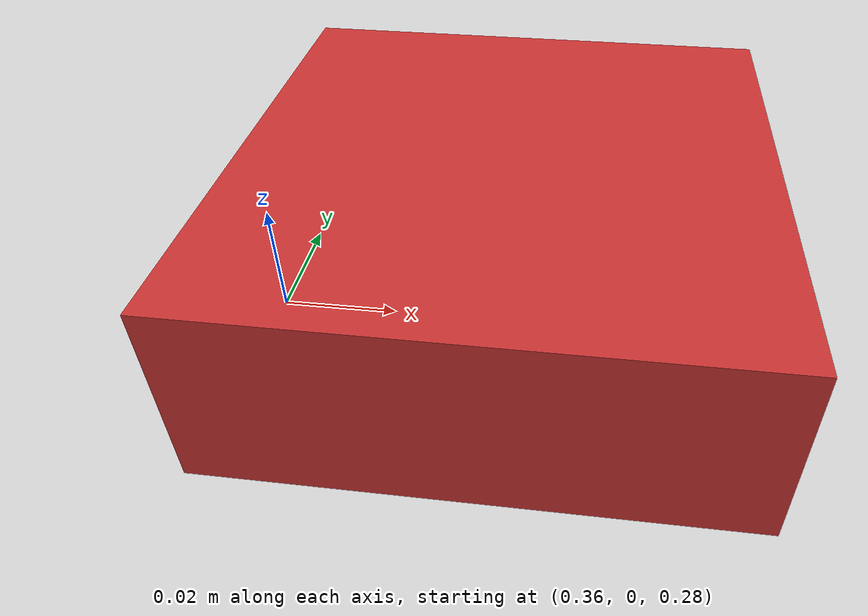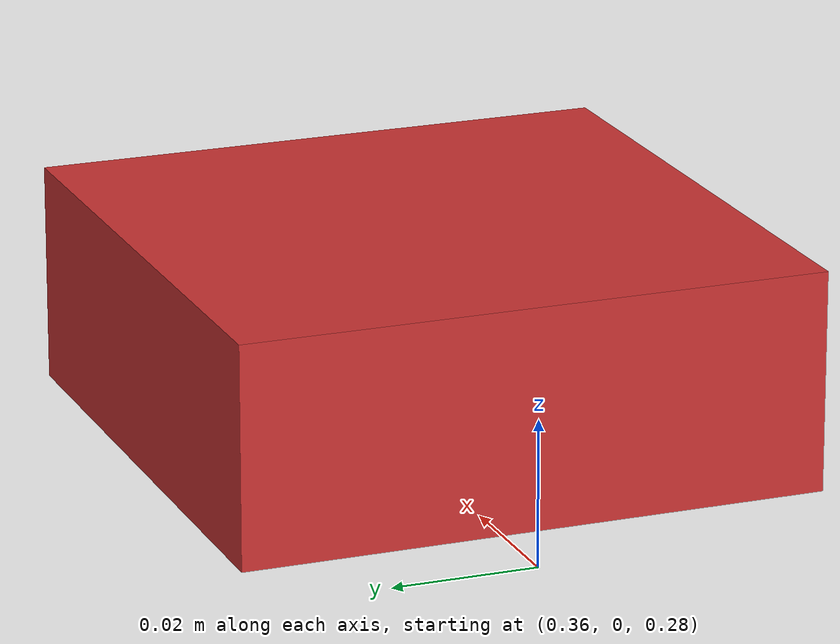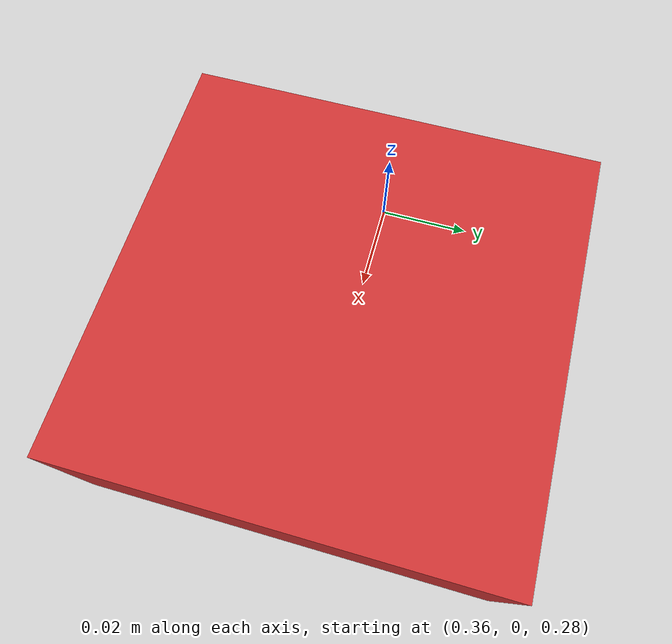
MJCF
<?xml version="1.0"?>
<mujoco model="cuboid">
  <worldbody>
    <body name="cuboid" pos="0.4 0 0.3">
      <freejoint name="cuboid_joint"/>
      <geom type="box" name="cuboid_geom" size="0.04 0.04 0.015" mass="0.05" rgba="0.8 0.2 0.2 1.0" condim="3" friction="1 0.03 0.003" contype="1" conaffinity="1" solref="0.01 1"/>
      <!-- Object site for observations (manipulation point) -->
      <site name="object_site" pos="0 0 0" size="0.01" rgba="1 0 0 1"/>
    </body>
  </worldbody>
</mujoco>
